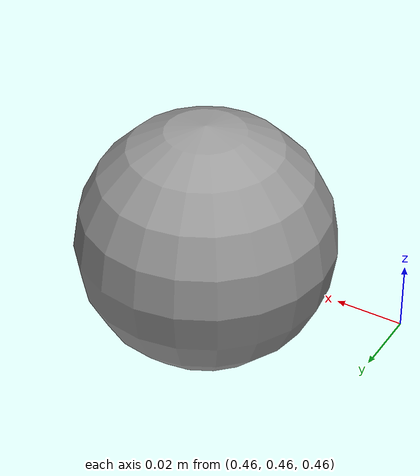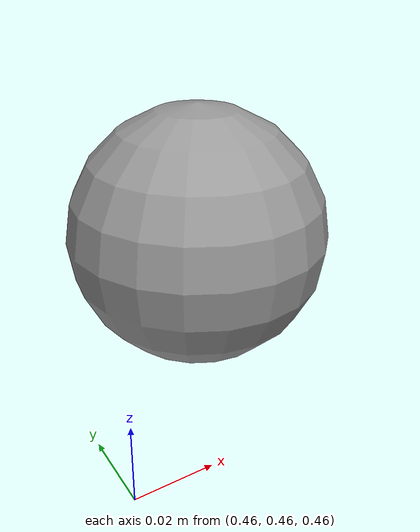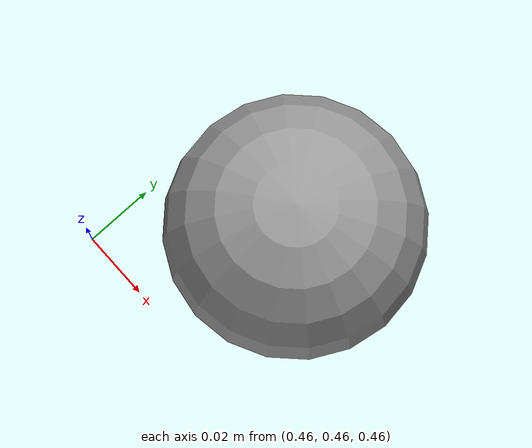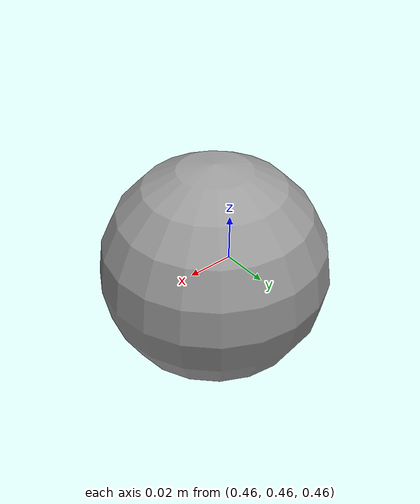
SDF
<?xml version="1.0" ?>
<sdf version="1.5">
	<world name="default">
		<include>
			<uri>model://sun</uri>
		</include>
		<include>
			<uri>model://ground_plane</uri>
		</include>
		<model name="ball">
			<pose>0.5 0.5 0.5 0 0 0</pose>
			<link name="link">
			<collision name="collision">
			  <geometry>
			    <sphere>
			      <radius>0.035</radius>
			    </sphere>
			  </geometry>
			  <surface>
			    <bounce>
			      <restitution_coefficient>0.5</restitution_coefficient>
			      <threshold>0.1</threshold>
			    </bounce>
			    <contact>
			      <ode>
			        <max_vel>100</max_vel>
			      </ode>
			    </contact>
			  </surface>
			</collision>
			<visual name="visual">
			  <geometry>
			    <sphere>
			      <radius>0.035</radius>
			    </sphere>
			  </geometry>
			  <material>
			    <script>
			      <uri>file://media/materials/scripts/gazebo.material</uri>
			      <name>Gazebo/Grey</name>
			    </script>
			  </material>
			</visual>
			</link>
	    </model>
	</world>
</sdf>
